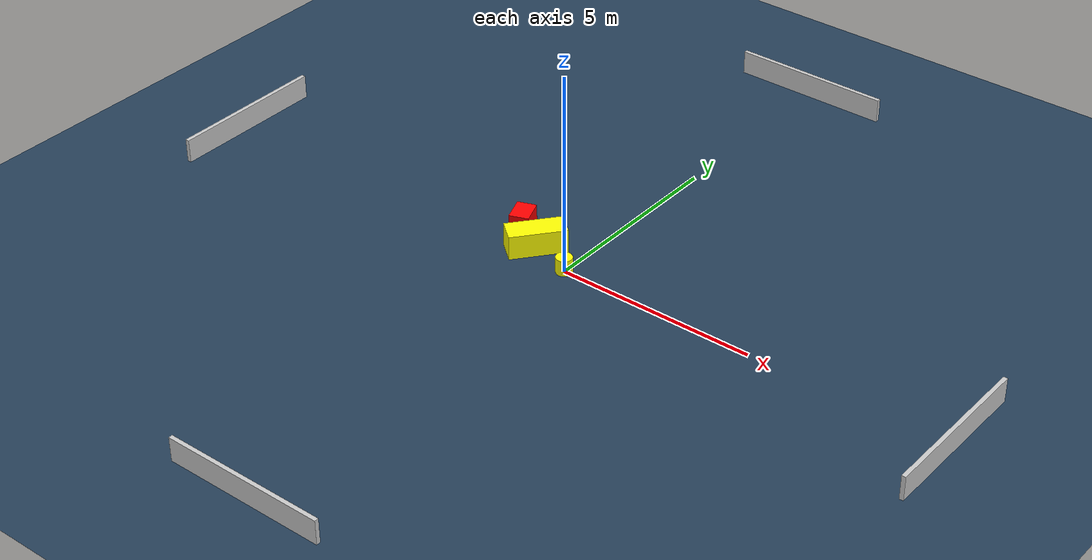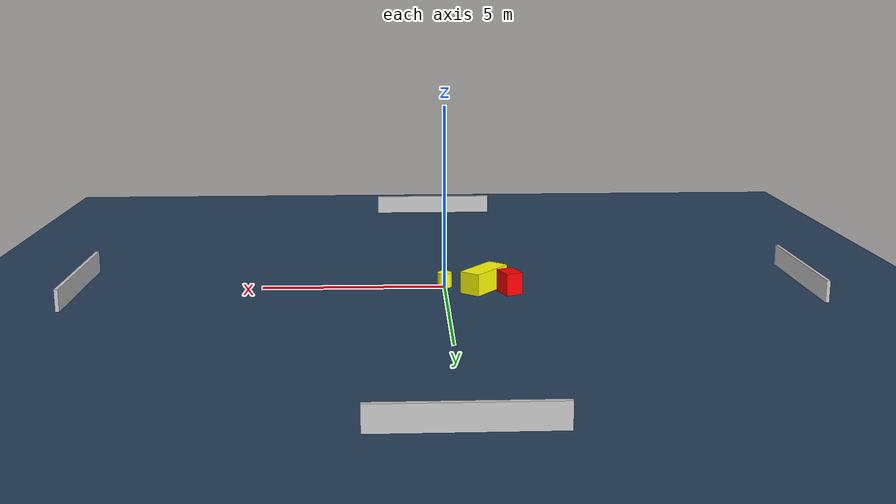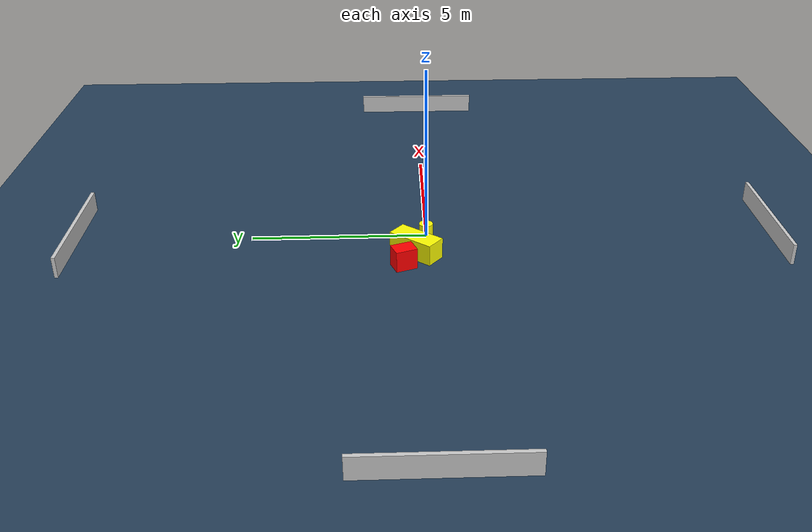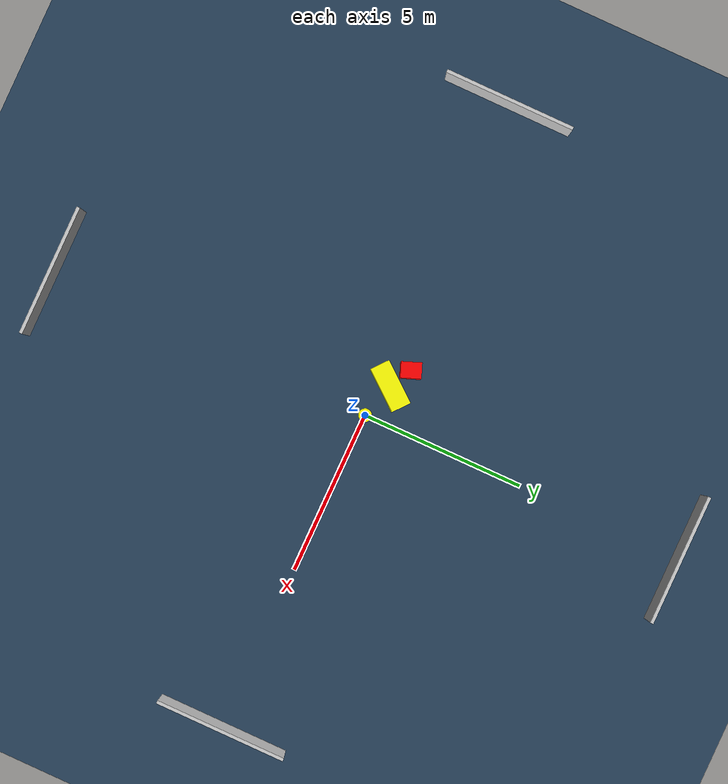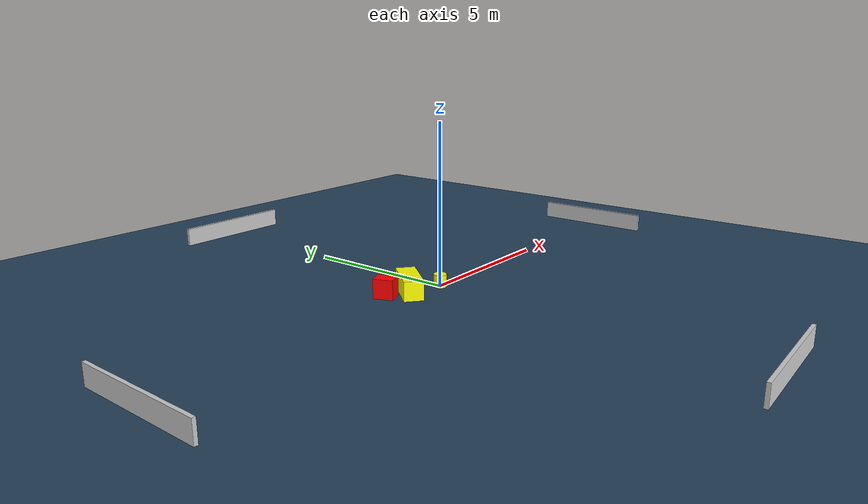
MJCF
<?xml version="1.0" ?>
<mujoco model="generated_environment">
  <option timestep="0.01" integrator="RK4" cone="elliptic"/>
  <default>
    <geom density="1"/>
  </default>
  <asset>
    <texture builtin="gradient" height="3072" name="skybox" rgb1="0.3 0.5 0.7" rgb2="0 0 0" type="skybox" width="512"/>
    <texture builtin="checker" height="300" name="groundplane" rgb1="0.2 0.3 0.4" rgb2="0.1 0.2 0.3" type="2d" width="300"/>
    <material name="groundplane" reflectance="0.2" texrepeat="5 5" texture="groundplane"/>
  </asset>
  <worldbody>
    <light dir="0 0 -1" directional="true" pos="0 0 1.5"/>
    <geom condim="3" friction="0.5 0.005 0.001" material="groundplane" name="floor" pos="0 0 0" size="0 0 0.05" type="plane"/>
    <body name="walls">
      <geom name="wall_1" condim="4" pos="-10.0 0.0 0.3" rgba="0.800000011920929 0.800000011920929 0.800000011920929 1.0" size="0.05 2.0 0.3" type="box"/>
      <geom name="wall_2" condim="4" pos="10.0 0.0 0.3" rgba="0.800000011920929 0.800000011920929 0.800000011920929 1.0" size="0.05 2.0 0.3" type="box"/>
      <geom name="wall_3" condim="4" pos="0.0 -10.0 0.3" rgba="0.800000011920929 0.800000011920929 0.800000011920929 1.0" size="2.0 0.05 0.3" type="box"/>
      <geom name="wall_4" condim="4" pos="0.0 10.0 0.3" rgba="0.800000011920929 0.800000011920929 0.800000011920929 1.0" size="2.0 0.05 0.3" type="box"/>
    </body>
    <body name="robot">
      <joint name="joint_x" type="slide" pos="0 0 0" axis="1 0 0"/>
      <joint name="joint_y" type="slide" pos="0 0 0" axis="0 1 0"/>
      <geom name="robot" type="cylinder" pos="0.0 0.0 0.2" size="0.2 0.2 0.0" mass="5.0" friction="1.0 0.005 0.0001" condim="4" rgba="1.0 1.0 0.0 1.0"/>
    </body>
    <body name="obstacle_1_movable">
      <geom name="obstacle_1_movable" condim="4" pos="-1.0666923345867727 0.3155312541399713 0.3" euler="0 0 50.99714107908997" friction="0.0 0.005 0.001" rgba="1.0 1.0 0.0 1.0" size="0.6938191999675285 0.3000099543773083 0.3" type="box" mass="0.1"/>
      <joint type="free"/>
    </body>
    <body name="obstacle_2_static">
      <geom name="obstacle_2_static" condim="4" pos="-1.7368976559120008 0.6646402131574254 0.3" euler="0 0 20.808574313635233" friction="0.0 0.005 0.001" rgba="1.0 0.0 0.0 1.0" size="0.23704963135255583 0.3072973542267606 0.3" type="box"/>
    </body>
  </worldbody>
  <actuator>
    <motor name="actuator_x" joint="joint_x" gear="1" ctrlrange="-1 1"/>
    <motor name="actuator_y" joint="joint_y" gear="1" ctrlrange="-1 1"/>
  </actuator>
</mujoco>
